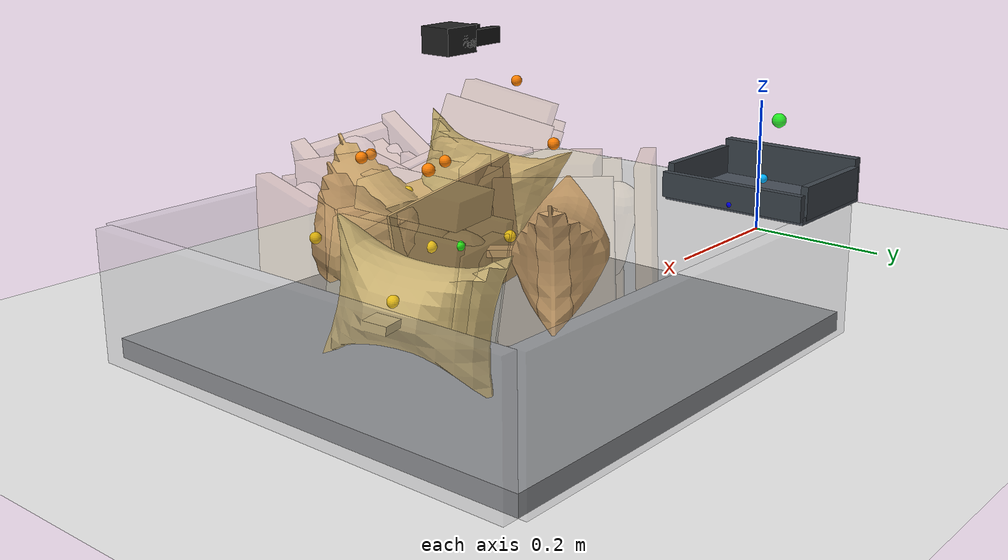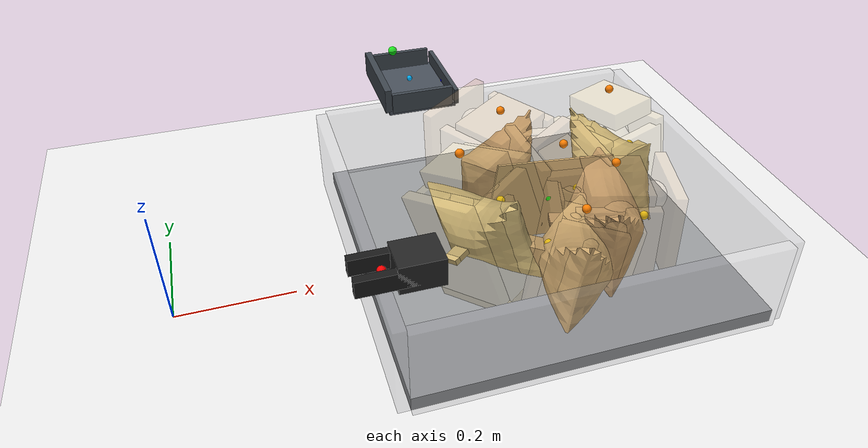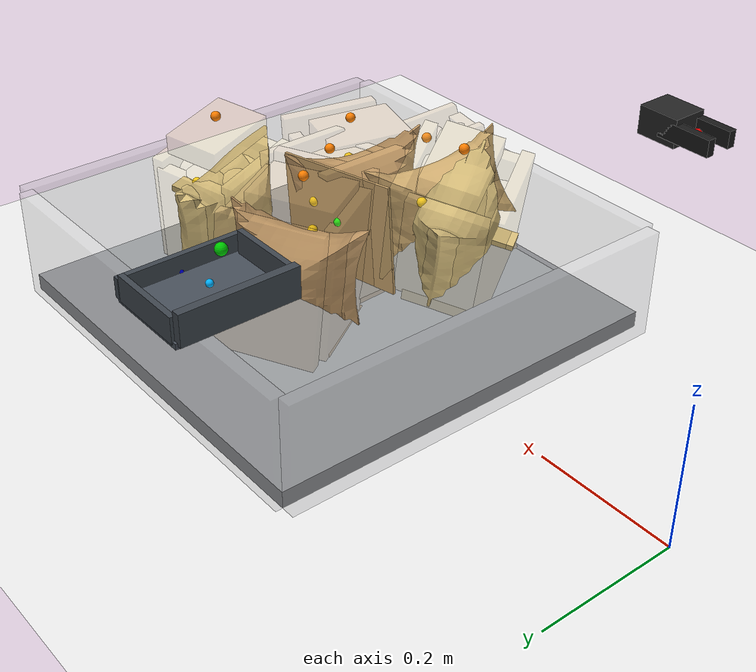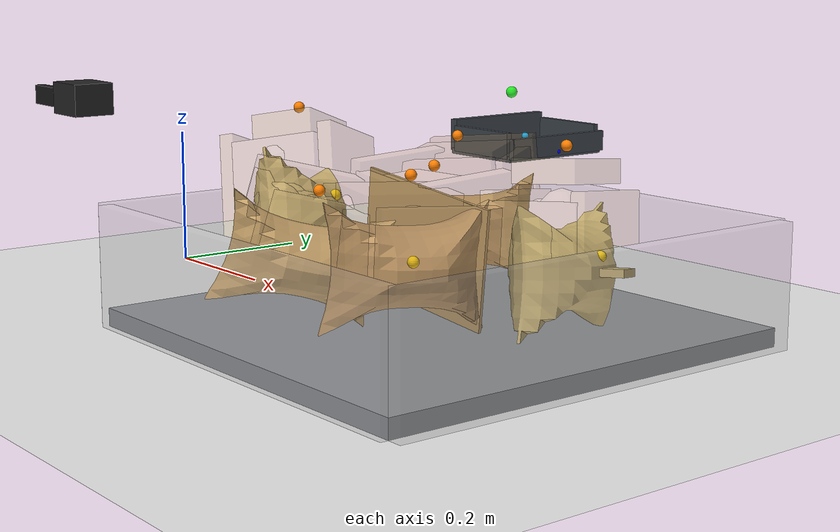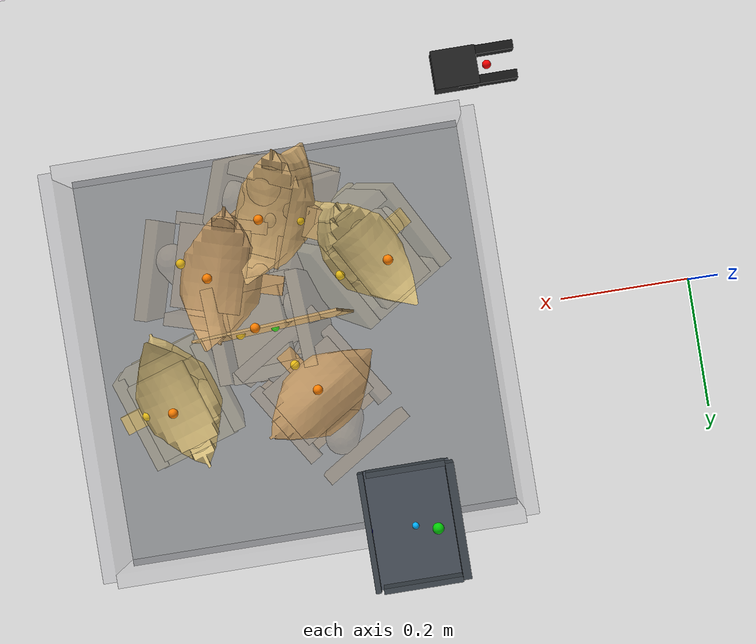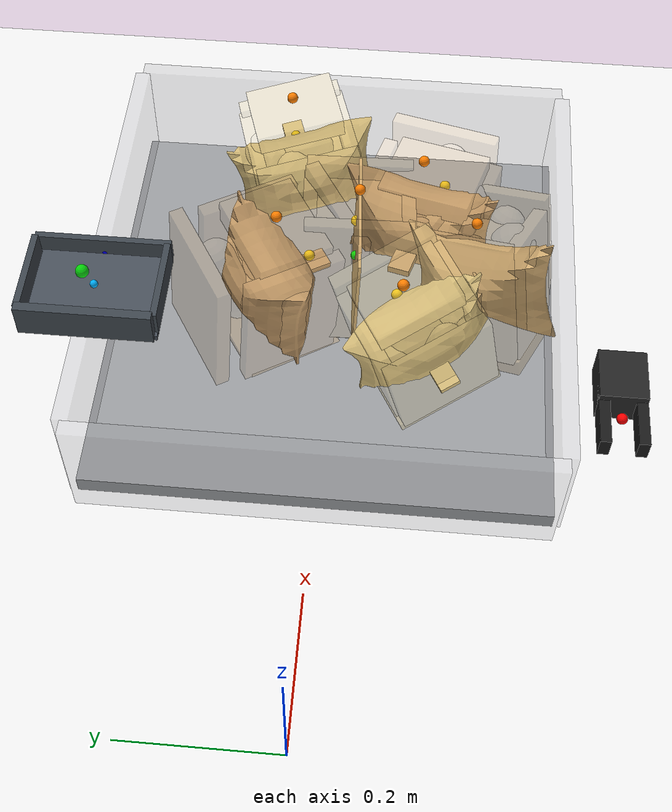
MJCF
<mujoco model="low_fill_top_collapsed_top_exposed_ep0_try0">
  <compiler angle="radian" coordinate="local" inertiafromgeom="true" meshdir="D:/Michael/2025/01.Research/01.Parceldetection/16.Pybullet/bullet3-master (1)/bullet3-master/examples/pybullet/examples/DeformableTest/Sackcodex2/object"/>
  <option timestep="0.002" gravity="0 0 -9.81" integrator="implicitfast" iterations="100" tolerance="1e-8"/>
  <size memory="768M" nconmax="12000"/>

  <visual>
    <global azimuth="128" elevation="-20"/>
    <headlight ambient="0.34 0.34 0.34" diffuse="0.78 0.78 0.78" specular="0.15 0.15 0.15"/>
    <rgba haze="0.11 0.13 0.18 1"/>
  </visual>

  <default>
    <geom condim="4" friction="1.15 0.03 0.01" margin="0.003" solimp="0.93 0.98 0.003" solref="0.012 1"/>
    <joint damping="1.2" armature="0.002"/>
    <position kp="2500" forcelimited="true" forcerange="-420 420"/>
    <motor ctrllimited="true"/>
  </default>

  <asset>
    <mesh name="sack_0_visual_mesh" file="sack2.obj" scale="0.0740 0.0740 0.0773"/>
    <mesh name="sack_1_visual_mesh" file="sack9.obj" scale="0.0759 0.0759 0.0815"/>
    <mesh name="sack_2_visual_mesh" file="sack10.obj" scale="0.0727 0.0727 0.0735"/>
    <mesh name="sack_3_visual_mesh" file="sack9.obj" scale="0.0738 0.0738 0.0819"/>
    <mesh name="sack_4_visual_mesh" file="sack9.obj" scale="0.0700 0.0700 0.0752"/>
    <mesh name="sack_5_visual_mesh" file="sack9.obj" scale="0.0686 0.0686 0.0742"/>
  </asset>

  <worldbody>
    <light name="key" pos="0.85 0.15 1.8" dir="-0.2 -0.1 -1" directional="true"/>
    <geom name="floor" type="plane" size="2 2 0.1" rgba="0.93 0.93 0.93 1"/>
    <geom name="work_pad" type="box" pos="0.62 0 0.012" size="0.30 0.30 0.012" rgba="0.60 0.61 0.62 1" friction="1.4 0.05 0.01"/>
    <geom name="corral_front" type="box" pos="0.93 0.00 0.08" size="0.010 0.30 0.08" rgba="0.55 0.55 0.58 0.22" friction="1.0 0.03 0.01"/>
    <geom name="corral_back" type="box" pos="0.31 0.00 0.08" size="0.010 0.30 0.08" rgba="0.55 0.55 0.58 0.18" friction="1.0 0.03 0.01"/>
    <geom name="corral_left" type="box" pos="0.62 0.30 0.08" size="0.30 0.010 0.08" rgba="0.55 0.55 0.58 0.14" friction="1.0 0.03 0.01"/>
    <geom name="corral_right" type="box" pos="0.62 -0.30 0.08" size="0.30 0.010 0.08" rgba="0.55 0.55 0.58 0.14" friction="1.0 0.03 0.01"/>
    <camera name="overview" pos="1.22 0.00 0.92" xyaxes="0 1 0 -0.46 0 0.88"/>

    <body name="gripper_mocap" mocap="true" pos="0.36 -0.33 0.30" quat="0.707107 0 -0.707107 0"/>
    <body name="scoop_mocap" mocap="true" pos="0.42 0.28 0.20" quat="1 0 0 0"/>

    <body name="gripper_ctrl_base" pos="0.36 -0.33 0.30">
      <inertial pos="0 0 0" mass="0.001" diaginertia="1e-6 1e-6 1e-6"/>
      <joint name="gripper_ctrl_x" type="slide" axis="1 0 0" limited="true" range="0.20 1.00"/>
      <body name="gripper_ctrl_y_body">
        <inertial pos="0 0 0" mass="0.001" diaginertia="1e-6 1e-6 1e-6"/>
        <joint name="gripper_ctrl_y" type="slide" axis="0 1 0" limited="true" range="-0.60 0.60"/>
        <body name="gripper_ctrl_z_body">
          <inertial pos="0 0 0" mass="0.001" diaginertia="1e-6 1e-6 1e-6"/>
          <joint name="gripper_ctrl_z" type="slide" axis="0 0 1" limited="true" range="0.04 0.70"/>
          <body name="gripper_ctrl_yaw_body">
            <inertial pos="0 0 0" mass="0.001" diaginertia="1e-6 1e-6 1e-6"/>
            <joint name="gripper_ctrl_yaw" type="hinge" axis="0 0 1" limited="true" range="-3.1416 3.1416"/>
            <body name="gripper_ctrl_pitch_body">
              <inertial pos="0 0 0" mass="0.001" diaginertia="1e-6 1e-6 1e-6"/>
              <joint name="gripper_ctrl_pitch" type="hinge" axis="0 1 0" limited="true" range="-3.1416 3.1416"/>
              <body name="gripper_ctrl_roll_body">
                <inertial pos="0 0 0" mass="0.001" diaginertia="1e-6 1e-6 1e-6"/>
                <joint name="gripper_ctrl_roll" type="hinge" axis="1 0 0" limited="true" range="-3.1416 3.1416"/>
              </body>
            </body>
          </body>
        </body>
      </body>
    </body>

    <body name="scoop_ctrl_base" pos="0.42 0.28 0.20">
      <inertial pos="0 0 0" mass="0.001" diaginertia="1e-6 1e-6 1e-6"/>
      <joint name="scoop_ctrl_x" type="slide" axis="1 0 0" limited="true" range="0.20 1.00"/>
      <body name="scoop_ctrl_y_body">
        <inertial pos="0 0 0" mass="0.001" diaginertia="1e-6 1e-6 1e-6"/>
        <joint name="scoop_ctrl_y" type="slide" axis="0 1 0" limited="true" range="-0.60 0.60"/>
        <body name="scoop_ctrl_z_body">
          <inertial pos="0 0 0" mass="0.001" diaginertia="1e-6 1e-6 1e-6"/>
          <joint name="scoop_ctrl_z" type="slide" axis="0 0 1" limited="true" range="0.04 0.70"/>
          <body name="scoop_ctrl_yaw_body">
            <inertial pos="0 0 0" mass="0.001" diaginertia="1e-6 1e-6 1e-6"/>
            <joint name="scoop_ctrl_yaw" type="hinge" axis="0 0 1" limited="true" range="-3.1416 3.1416"/>
            <body name="scoop_ctrl_pitch_body">
              <inertial pos="0 0 0" mass="0.001" diaginertia="1e-6 1e-6 1e-6"/>
              <joint name="scoop_ctrl_pitch" type="hinge" axis="0 1 0" limited="true" range="-3.1416 3.1416"/>
              <body name="scoop_ctrl_roll_body">
                <inertial pos="0 0 0" mass="0.001" diaginertia="1e-6 1e-6 1e-6"/>
                <joint name="scoop_ctrl_roll" type="hinge" axis="1 0 0" limited="true" range="-3.1416 3.1416"/>
              </body>
            </body>
          </body>
        </body>
      </body>
    </body>

    <body name="gripper_tool" pos="0.36 -0.33 0.30" quat="0.707107 0 -0.707107 0">
      <freejoint name="gripper_tool_free"/>
      <inertial pos="0 0 0.04" mass="0.08" diaginertia="0.0002 0.0002 0.0002"/>
      <geom name="gripper_palm" type="box" pos="0 0 0.030" size="0.020 0.026 0.030" rgba="0.14 0.14 0.14 1"/>
      <body name="left_finger_body" pos="0 0 0.072">
        <joint name="left_finger_slide" type="slide" axis="0 1 0" limited="true" range="0.010 0.040" damping="12"/>
        <geom name="left_finger_geom" type="box" pos="0 0.020 0" size="0.012 0.006 0.040" rgba="0.10 0.10 0.10 1" friction="2.2 0.05 0.01"/>
      </body>
      <body name="right_finger_body" pos="0 0 0.072">
        <joint name="right_finger_slide" type="slide" axis="0 -1 0" limited="true" range="0.010 0.040" damping="12"/>
        <geom name="right_finger_geom" type="box" pos="0 -0.020 0" size="0.012 0.006 0.040" rgba="0.10 0.10 0.10 1" friction="2.2 0.05 0.01"/>
      </body>
      <site name="gripper_pinch_site" pos="0 0 0.074" size="0.006" rgba="1 0 0 1"/>
    </body>

    <body name="scoop_tool" pos="0.42 0.28 0.20" quat="1 0 0 0">
      <freejoint name="scoop_tool_free"/>
      <inertial pos="0 0 0.02" mass="0.10" diaginertia="0.0003 0.0003 0.0003"/>
      <geom name="scoop_plate" type="box" pos="0.062 0 0" size="0.062 0.085 0.004" rgba="0.28 0.31 0.35 1" friction="1.7 0.05 0.01"/>
      <geom name="scoop_lip" type="box" pos="0.126 0 0.014" size="0.004 0.085 0.014" rgba="0.24 0.27 0.30 1" friction="1.7 0.05 0.01"/>
      <geom name="scoop_left_rail" type="box" pos="0.062 0.082 0.018" size="0.056 0.004 0.018" rgba="0.24 0.27 0.30 1"/>
      <geom name="scoop_right_rail" type="box" pos="0.062 -0.082 0.018" size="0.056 0.004 0.018" rgba="0.24 0.27 0.30 1"/>
      <geom name="scoop_backstop" type="box" pos="0.000 0 0.022" size="0.006 0.082 0.022" rgba="0.24 0.27 0.30 1"/>
      <site name="scoop_tip_site" pos="0.126 0 0.005" size="0.005" rgba="0 0 1 1"/>
      <site name="scoop_center_site" pos="0.060 0 0.020" size="0.005" rgba="0 0.7 1 1"/>
      <site name="score_overlay_site" pos="0.030 0 0.080" size="0.008" rgba="0 1 0 0.8"/>
    </body>

    <body name="sack_0" pos="0.6381 -0.0275 0.1207" euler="0.0267 0.1306 -1.5148">
      <freejoint name="sack_0_free"/>

      <geom name="sack_0_visual" type="mesh" mesh="sack_0_visual_mesh" rgba="0.820 0.670 0.440 0.92" contype="0" conaffinity="0"/>
      <site name="sack_0_center_site" pos="0 0 0.000" size="0.006" rgba="0 1 0 1"/>
      <site name="sack_0_top_site" pos="0 0.0060 0.1067" size="0.007" rgba="1 0.5 0 1"/>
      <site name="sack_0_side_site" pos="0.0000 0.0492 0.018" size="0.007" rgba="1 0.8 0 1"/>

      <geom name="sack_0_core_geom" type="ellipsoid" pos="0 0 0.0057" size="0.0455 0.0356 0.0678" mass="0.7222" rgba="0.820 0.670 0.440 0.12" friction="1.0 0.03 0.01"/>
      <geom name="sack_0_core_front" type="capsule" fromto="-0.0200 0 -0.0200 0.0450 0 0.0600" size="0.0301" mass="0.1720" rgba="0.820 0.670 0.440 0.10"/>
      <geom name="sack_0_core_left" type="capsule" fromto="-0.008 0.0248 -0.010 0.018 0.0428 0.060" size="0.0240" mass="0.3095" rgba="0.820 0.670 0.440 0.10"/>
      <geom name="sack_0_core_right" type="capsule" fromto="-0.006 -0.0248 -0.008 0.020 -0.0448 0.054" size="0.0221" mass="0.3095" rgba="0.820 0.670 0.440 0.10"/>

      <body name="sack_0_bottom_support_proxy_body" pos="0 0.0033 -0.0983">
        <joint name="sack_0_bottom_x" type="slide" axis="1 0 0" limited="true" range="-0.012 0.012" damping="18" stiffness="464.5"/>
        <joint name="sack_0_bottom_y" type="slide" axis="0 1 0" limited="true" range="-0.012 0.012" damping="18" stiffness="464.5"/>
        <joint name="sack_0_bottom_z" type="slide" axis="0 0 1" limited="true" range="-0.008 0.020" damping="24" stiffness="572.2"/>
        <geom name="sack_0_bottom_support_proxy" type="box" size="0.0731 0.0552 0.0100" mass="0.1376" rgba="0.820 0.670 0.440 0.34" friction="1.55 0.05 0.01"/>
      </body>

      <body name="sack_0_top_grasp_proxy_body" pos="0.0000 0.0060 0.0767">
        <joint name="sack_0_top_x" type="slide" axis="1 0 0" limited="true" range="-0.018 0.018" damping="12" stiffness="178.4"/>
        <joint name="sack_0_top_y" type="slide" axis="0 1 0" limited="true" range="-0.018 0.018" damping="12" stiffness="178.4"/>
        <joint name="sack_0_top_z" type="slide" axis="0 0 1" limited="true" range="-0.040 0.010" damping="14" stiffness="131.5"/>
        <geom name="sack_0_top_grasp_proxy" type="box" size="0.0571 0.0392 0.0150" mass="0.1032" rgba="0.820 0.670 0.440 0.26" friction="2.2 0.05 0.01"/>
      </body>

      <body name="sack_0_left_side_proxy_body" pos="0 0.0640 0.010">
        <joint name="sack_0_left_side_slide" type="slide" axis="0 -1 0" limited="true" range="-0.028 0.016" damping="16" stiffness="231.8"/>
        <geom name="sack_0_left_side_proxy" type="box" size="0.0691 0.0090 0.0963" mass="0.1032" rgba="0.820 0.670 0.440 0.24"/>
      </body>

      <body name="sack_0_right_side_proxy_body" pos="0 -0.0600 0.010">
        <joint name="sack_0_right_side_slide" type="slide" axis="0 1 0" limited="true" range="-0.028 0.016" damping="16" stiffness="214.9"/>
        <geom name="sack_0_right_side_proxy" type="box" size="0.0691 0.0090 0.0963" mass="0.1032" rgba="0.820 0.670 0.440 0.24"/>
      </body>

      <body name="sack_0_front_proxy_body" pos="0.0631 0 0.000">
        <joint name="sack_0_front_slide" type="slide" axis="-1 0 0" limited="true" range="-0.022 0.012" damping="15" stiffness="222.2"/>
        <geom name="sack_0_front_support_proxy" type="box" size="0.0090 0.0552 0.0943" mass="0.0860" rgba="0.820 0.670 0.440 0.22"/>
      </body>

      <body name="sack_0_back_proxy_body" pos="-0.0631 0 0.000">
        <joint name="sack_0_back_slide" type="slide" axis="1 0 0" limited="true" range="-0.022 0.012" damping="15" stiffness="205.3"/>
        <geom name="sack_0_back_support_proxy" type="box" size="0.0090 0.0552 0.0943" mass="0.0860" rgba="0.820 0.670 0.440 0.22"/>
      </body>

      <body name="sack_0_shape_proxy_body" pos="0.0000 0.0168 0.0385">
        <joint name="sack_0_bulge_y" type="slide" axis="0 1 0" limited="true" range="-0.020 0.020" damping="8" stiffness="97.0"/>
        <joint name="sack_0_bulge_z" type="slide" axis="0 0 1" limited="true" range="-0.014 0.028" damping="8" stiffness="97.8"/>
        <geom name="sack_0_shape_proxy" type="ellipsoid" size="0.0200 0.0161 0.0263" mass="0.0688" rgba="0.820 0.670 0.440 0.28"/>
      </body>
    </body>

    <body name="sack_1" pos="0.7054 -0.1119 0.1185" euler="-0.0427 0.0159 -1.8568">
      <freejoint name="sack_1_free"/>

      <geom name="sack_1_visual" type="mesh" mesh="sack_1_visual_mesh" rgba="0.760 0.600 0.400 0.92" contype="0" conaffinity="0"/>
      <site name="sack_1_center_site" pos="0 0 0.000" size="0.006" rgba="0 1 0 1"/>
      <site name="sack_1_top_site" pos="0 0.0060 0.1097" size="0.007" rgba="1 0.5 0 1"/>
      <site name="sack_1_side_site" pos="0.0140 0.0594 0.018" size="0.007" rgba="1 0.8 0 1"/>

      <geom name="sack_1_core_geom" type="ellipsoid" pos="0 0 0.0059" size="0.0453 0.0357 0.0799" mass="0.9524" rgba="0.760 0.600 0.400 0.12" friction="1.0 0.03 0.01"/>
      <geom name="sack_1_core_front" type="capsule" fromto="-0.0060 0 -0.0200 0.0590 0 0.0600" size="0.0311" mass="0.2268" rgba="0.760 0.600 0.400 0.10"/>
      <geom name="sack_1_core_left" type="capsule" fromto="-0.008 0.0469 -0.010 0.018 0.0649 0.060" size="0.0243" mass="0.4082" rgba="0.760 0.600 0.400 0.10"/>
      <geom name="sack_1_core_right" type="capsule" fromto="-0.006 -0.0469 -0.008 0.020 -0.0669 0.054" size="0.0223" mass="0.4082" rgba="0.760 0.600 0.400 0.10"/>

      <body name="sack_1_bottom_support_proxy_body" pos="0 -0.0002 -0.0782">
        <joint name="sack_1_bottom_x" type="slide" axis="1 0 0" limited="true" range="-0.012 0.012" damping="18" stiffness="494.2"/>
        <joint name="sack_1_bottom_y" type="slide" axis="0 1 0" limited="true" range="-0.012 0.012" damping="18" stiffness="494.2"/>
        <joint name="sack_1_bottom_z" type="slide" axis="0 0 1" limited="true" range="-0.008 0.020" damping="24" stiffness="608.4"/>
        <geom name="sack_1_bottom_support_proxy" type="box" size="0.0761 0.0654 0.0100" mass="0.1814" rgba="0.760 0.600 0.400 0.34" friction="1.55 0.05 0.01"/>
      </body>

      <body name="sack_1_top_grasp_proxy_body" pos="0.0140 0.0060 0.0797">
        <joint name="sack_1_top_x" type="slide" axis="1 0 0" limited="true" range="-0.018 0.018" damping="12" stiffness="190.0"/>
        <joint name="sack_1_top_y" type="slide" axis="0 1 0" limited="true" range="-0.018 0.018" damping="12" stiffness="190.0"/>
        <joint name="sack_1_top_z" type="slide" axis="0 0 1" limited="true" range="-0.040 0.010" damping="14" stiffness="141.4"/>
        <geom name="sack_1_top_grasp_proxy" type="box" size="0.0601 0.0494 0.0150" mass="0.1361" rgba="0.760 0.600 0.400 0.26" friction="2.2 0.05 0.01"/>
      </body>

      <body name="sack_1_left_side_proxy_body" pos="0 0.0962 0.010">
        <joint name="sack_1_left_side_slide" type="slide" axis="0 -1 0" limited="true" range="-0.028 0.016" damping="16" stiffness="252.4"/>
        <geom name="sack_1_left_side_proxy" type="box" size="0.0721 0.0090 0.0762" mass="0.1361" rgba="0.760 0.600 0.400 0.24"/>
      </body>

      <body name="sack_1_right_side_proxy_body" pos="0 -0.0922 0.010">
        <joint name="sack_1_right_side_slide" type="slide" axis="0 1 0" limited="true" range="-0.028 0.016" damping="16" stiffness="233.9"/>
        <geom name="sack_1_right_side_proxy" type="box" size="0.0721 0.0090 0.0762" mass="0.1361" rgba="0.760 0.600 0.400 0.24"/>
      </body>

      <body name="sack_1_front_proxy_body" pos="0.0801 0 0.000">
        <joint name="sack_1_front_slide" type="slide" axis="-1 0 0" limited="true" range="-0.022 0.012" damping="15" stiffness="237.1"/>
        <geom name="sack_1_front_support_proxy" type="box" size="0.0090 0.0654 0.0742" mass="0.1134" rgba="0.760 0.600 0.400 0.22"/>
      </body>

      <body name="sack_1_back_proxy_body" pos="-0.0661 0 0.000">
        <joint name="sack_1_back_slide" type="slide" axis="1 0 0" limited="true" range="-0.022 0.012" damping="15" stiffness="218.5"/>
        <geom name="sack_1_back_support_proxy" type="box" size="0.0090 0.0654 0.0742" mass="0.1134" rgba="0.760 0.600 0.400 0.22"/>
      </body>

      <body name="sack_1_shape_proxy_body" pos="0.0084 0.0389 0.0286">
        <joint name="sack_1_bulge_y" type="slide" axis="0 1 0" limited="true" range="-0.020 0.020" damping="8" stiffness="77.2"/>
        <joint name="sack_1_bulge_z" type="slide" axis="0 0 1" limited="true" range="-0.014 0.028" damping="8" stiffness="82.9"/>
        <geom name="sack_1_shape_proxy" type="ellipsoid" size="0.0203 0.0165 0.0261" mass="0.0907" rgba="0.760 0.600 0.400 0.28"/>
      </body>
    </body>

    <body name="sack_2" pos="0.6125 -0.1960 0.1227" euler="-0.1534 0.2744 -1.9411">
      <freejoint name="sack_2_free"/>

      <geom name="sack_2_visual" type="mesh" mesh="sack_2_visual_mesh" rgba="0.820 0.670 0.440 0.92" contype="0" conaffinity="0"/>
      <site name="sack_2_center_site" pos="0 0 0.000" size="0.006" rgba="0 1 0 1"/>
      <site name="sack_2_top_site" pos="0 -0.0060 0.0869" size="0.007" rgba="1 0.5 0 1"/>
      <site name="sack_2_side_site" pos="0.0000 -0.0464 0.018" size="0.007" rgba="1 0.8 0 1"/>

      <geom name="sack_2_core_geom" type="ellipsoid" pos="0 0 0.0056" size="0.0446 0.0343 0.0659" mass="0.7113" rgba="0.820 0.670 0.440 0.12" friction="1.0 0.03 0.01"/>
      <geom name="sack_2_core_front" type="capsule" fromto="-0.0200 0 -0.0200 0.0450 0 0.0600" size="0.0290" mass="0.1694" rgba="0.820 0.670 0.440 0.10"/>
      <geom name="sack_2_core_left" type="capsule" fromto="-0.008 0.0265 -0.010 0.018 0.0445 0.060" size="0.0241" mass="0.3048" rgba="0.820 0.670 0.440 0.10"/>
      <geom name="sack_2_core_right" type="capsule" fromto="-0.006 -0.0265 -0.008 0.020 -0.0465 0.054" size="0.0221" mass="0.3048" rgba="0.820 0.670 0.440 0.10"/>

      <body name="sack_2_bottom_support_proxy_body" pos="0 -0.0067 -0.0890">
        <joint name="sack_2_bottom_x" type="slide" axis="1 0 0" limited="true" range="-0.012 0.012" damping="18" stiffness="430.5"/>
        <joint name="sack_2_bottom_y" type="slide" axis="0 1 0" limited="true" range="-0.012 0.012" damping="18" stiffness="430.5"/>
        <joint name="sack_2_bottom_z" type="slide" axis="0 0 1" limited="true" range="-0.008 0.020" damping="24" stiffness="530.6"/>
        <geom name="sack_2_bottom_support_proxy" type="box" size="0.0720 0.0524 0.0100" mass="0.1355" rgba="0.820 0.670 0.440 0.34" friction="1.55 0.05 0.01"/>
      </body>

      <body name="sack_2_top_grasp_proxy_body" pos="0.0000 -0.0060 0.0569">
        <joint name="sack_2_top_x" type="slide" axis="1 0 0" limited="true" range="-0.018 0.018" damping="12" stiffness="165.2"/>
        <joint name="sack_2_top_y" type="slide" axis="0 1 0" limited="true" range="-0.018 0.018" damping="12" stiffness="165.2"/>
        <joint name="sack_2_top_z" type="slide" axis="0 0 1" limited="true" range="-0.040 0.010" damping="14" stiffness="120.2"/>
        <geom name="sack_2_top_grasp_proxy" type="box" size="0.0560 0.0364 0.0150" mass="0.1016" rgba="0.820 0.670 0.440 0.26" friction="2.2 0.05 0.01"/>
      </body>

      <body name="sack_2_left_side_proxy_body" pos="0 0.0629 0.010">
        <joint name="sack_2_left_side_slide" type="slide" axis="0 -1 0" limited="true" range="-0.028 0.016" damping="16" stiffness="208.9"/>
        <geom name="sack_2_left_side_proxy" type="box" size="0.0680 0.0090 0.0870" mass="0.1016" rgba="0.820 0.670 0.440 0.24"/>
      </body>

      <body name="sack_2_right_side_proxy_body" pos="0 -0.0589 0.010">
        <joint name="sack_2_right_side_slide" type="slide" axis="0 1 0" limited="true" range="-0.028 0.016" damping="16" stiffness="193.9"/>
        <geom name="sack_2_right_side_proxy" type="box" size="0.0680 0.0090 0.0870" mass="0.1016" rgba="0.820 0.670 0.440 0.24"/>
      </body>

      <body name="sack_2_front_proxy_body" pos="0.0620 0 0.000">
        <joint name="sack_2_front_slide" type="slide" axis="-1 0 0" limited="true" range="-0.022 0.012" damping="15" stiffness="205.2"/>
        <geom name="sack_2_front_support_proxy" type="box" size="0.0090 0.0524 0.0850" mass="0.0847" rgba="0.820 0.670 0.440 0.22"/>
      </body>

      <body name="sack_2_back_proxy_body" pos="-0.0620 0 0.000">
        <joint name="sack_2_back_slide" type="slide" axis="1 0 0" limited="true" range="-0.022 0.012" damping="15" stiffness="190.2"/>
        <geom name="sack_2_back_support_proxy" type="box" size="0.0090 0.0524 0.0850" mass="0.0847" rgba="0.820 0.670 0.440 0.22"/>
      </body>

      <body name="sack_2_shape_proxy_body" pos="0.0000 -0.0185 0.0498">
        <joint name="sack_2_bulge_y" type="slide" axis="0 1 0" limited="true" range="-0.020 0.020" damping="8" stiffness="119.7"/>
        <joint name="sack_2_bulge_z" type="slide" axis="0 0 1" limited="true" range="-0.014 0.028" damping="8" stiffness="114.8"/>
        <geom name="sack_2_shape_proxy" type="ellipsoid" size="0.0201 0.0161 0.0264" mass="0.0677" rgba="0.820 0.670 0.440 0.28"/>
      </body>
    </body>

    <body name="sack_3" pos="0.7959 0.0538 0.1086" euler="-0.0881 -0.1079 1.8720">
      <freejoint name="sack_3_free"/>

      <geom name="sack_3_visual" type="mesh" mesh="sack_3_visual_mesh" rgba="0.840 0.740 0.480 0.92" contype="0" conaffinity="0"/>
      <site name="sack_3_center_site" pos="0 0 0.000" size="0.006" rgba="0 1 0 1"/>
      <site name="sack_3_top_site" pos="0 -0.0060 0.1478" size="0.007" rgba="1 0.5 0 1"/>
      <site name="sack_3_side_site" pos="0.0000 -0.0522 0.018" size="0.007" rgba="1 0.8 0 1"/>

      <geom name="sack_3_core_geom" type="ellipsoid" pos="0 0 0.0059" size="0.0513 0.0436 0.0919" mass="1.1869" rgba="0.840 0.740 0.480 0.12" friction="1.0 0.03 0.01"/>
      <geom name="sack_3_core_front" type="capsule" fromto="-0.0200 0 -0.0200 0.0450 0 0.0600" size="0.0323" mass="0.2826" rgba="0.840 0.740 0.480 0.10"/>
      <geom name="sack_3_core_left" type="capsule" fromto="-0.008 0.0203 -0.010 0.018 0.0383 0.060" size="0.0240" mass="0.5087" rgba="0.840 0.740 0.480 0.10"/>
      <geom name="sack_3_core_right" type="capsule" fromto="-0.006 -0.0203 -0.008 0.020 -0.0403 0.054" size="0.0220" mass="0.5087" rgba="0.840 0.740 0.480 0.10"/>

      <body name="sack_3_bottom_support_proxy_body" pos="0 0.0110 -0.0870">
        <joint name="sack_3_bottom_x" type="slide" axis="1 0 0" limited="true" range="-0.012 0.012" damping="18" stiffness="529.7"/>
        <joint name="sack_3_bottom_y" type="slide" axis="0 1 0" limited="true" range="-0.012 0.012" damping="18" stiffness="529.7"/>
        <joint name="sack_3_bottom_z" type="slide" axis="0 0 1" limited="true" range="-0.008 0.020" damping="24" stiffness="651.8"/>
        <geom name="sack_3_bottom_support_proxy" type="box" size="0.0731 0.0582 0.0100" mass="0.2261" rgba="0.840 0.740 0.480 0.34" friction="1.55 0.05 0.01"/>
      </body>

      <body name="sack_3_top_grasp_proxy_body" pos="0.0000 -0.0060 0.1178">
        <joint name="sack_3_top_x" type="slide" axis="1 0 0" limited="true" range="-0.018 0.018" damping="12" stiffness="203.8"/>
        <joint name="sack_3_top_y" type="slide" axis="0 1 0" limited="true" range="-0.018 0.018" damping="12" stiffness="203.8"/>
        <joint name="sack_3_top_z" type="slide" axis="0 0 1" limited="true" range="-0.040 0.010" damping="14" stiffness="153.2"/>
        <geom name="sack_3_top_grasp_proxy" type="box" size="0.0571 0.0422 0.0150" mass="0.1696" rgba="0.840 0.740 0.480 0.26" friction="2.2 0.05 0.01"/>
      </body>

      <body name="sack_3_left_side_proxy_body" pos="0 0.0625 0.010">
        <joint name="sack_3_left_side_slide" type="slide" axis="0 -1 0" limited="true" range="-0.028 0.016" damping="16" stiffness="276.2"/>
        <geom name="sack_3_left_side_proxy" type="box" size="0.0691 0.0090 0.0850" mass="0.1696" rgba="0.840 0.740 0.480 0.24"/>
      </body>

      <body name="sack_3_right_side_proxy_body" pos="0 -0.0585 0.010">
        <joint name="sack_3_right_side_slide" type="slide" axis="0 1 0" limited="true" range="-0.028 0.016" damping="16" stiffness="255.6"/>
        <geom name="sack_3_right_side_proxy" type="box" size="0.0691 0.0090 0.0850" mass="0.1696" rgba="0.840 0.740 0.480 0.24"/>
      </body>

      <body name="sack_3_front_proxy_body" pos="0.0631 0 0.000">
        <joint name="sack_3_front_slide" type="slide" axis="-1 0 0" limited="true" range="-0.022 0.012" damping="15" stiffness="254.8"/>
        <geom name="sack_3_front_support_proxy" type="box" size="0.0090 0.0582 0.0830" mass="0.1413" rgba="0.840 0.740 0.480 0.22"/>
      </body>

      <body name="sack_3_back_proxy_body" pos="-0.0631 0 0.000">
        <joint name="sack_3_back_slide" type="slide" axis="1 0 0" limited="true" range="-0.022 0.012" damping="15" stiffness="234.3"/>
        <geom name="sack_3_back_support_proxy" type="box" size="0.0090 0.0582 0.0830" mass="0.1413" rgba="0.840 0.740 0.480 0.22"/>
      </body>

      <body name="sack_3_shape_proxy_body" pos="0.0000 -0.0123 0.0168">
        <joint name="sack_3_bulge_y" type="slide" axis="0 1 0" limited="true" range="-0.020 0.020" damping="8" stiffness="60.0"/>
        <joint name="sack_3_bulge_z" type="slide" axis="0 0 1" limited="true" range="-0.014 0.028" damping="8" stiffness="70.0"/>
        <geom name="sack_3_shape_proxy" type="ellipsoid" size="0.0200 0.0160 0.0261" mass="0.1130" rgba="0.840 0.740 0.480 0.28"/>
      </body>
    </body>

    <body name="sack_4" pos="0.5862 0.0830 0.1231" euler="0.0746 -0.0463 0.5642">
      <freejoint name="sack_4_free"/>

      <geom name="sack_4_visual" type="mesh" mesh="sack_4_visual_mesh" rgba="0.760 0.600 0.400 0.92" contype="0" conaffinity="0"/>
      <site name="sack_4_center_site" pos="0 0 0.000" size="0.006" rgba="0 1 0 1"/>
      <site name="sack_4_top_site" pos="0 -0.0060 0.1247" size="0.007" rgba="1 0.5 0 1"/>
      <site name="sack_4_side_site" pos="0.0000 -0.0594 0.018" size="0.007" rgba="1 0.8 0 1"/>

      <geom name="sack_4_core_geom" type="ellipsoid" pos="0 0 0.0058" size="0.0453 0.0357 0.0799" mass="0.9286" rgba="0.760 0.600 0.400 0.12" friction="1.0 0.03 0.01"/>
      <geom name="sack_4_core_front" type="capsule" fromto="-0.0200 0 -0.0200 0.0450 0 0.0600" size="0.0311" mass="0.2211" rgba="0.760 0.600 0.400 0.10"/>
      <geom name="sack_4_core_left" type="capsule" fromto="-0.008 0.0479 -0.010 0.018 0.0659 0.060" size="0.0243" mass="0.3980" rgba="0.760 0.600 0.400 0.10"/>
      <geom name="sack_4_core_right" type="capsule" fromto="-0.006 -0.0479 -0.008 0.020 -0.0679 0.054" size="0.0223" mass="0.3980" rgba="0.760 0.600 0.400 0.10"/>

      <body name="sack_4_bottom_support_proxy_body" pos="0 -0.0099 -0.1005">
        <joint name="sack_4_bottom_x" type="slide" axis="1 0 0" limited="true" range="-0.012 0.012" damping="18" stiffness="494.2"/>
        <joint name="sack_4_bottom_y" type="slide" axis="0 1 0" limited="true" range="-0.012 0.012" damping="18" stiffness="494.2"/>
        <joint name="sack_4_bottom_z" type="slide" axis="0 0 1" limited="true" range="-0.008 0.020" damping="24" stiffness="608.5"/>
        <geom name="sack_4_bottom_support_proxy" type="box" size="0.0761 0.0654 0.0100" mass="0.1769" rgba="0.760 0.600 0.400 0.34" friction="1.55 0.05 0.01"/>
      </body>

      <body name="sack_4_top_grasp_proxy_body" pos="0.0000 -0.0060 0.0947">
        <joint name="sack_4_top_x" type="slide" axis="1 0 0" limited="true" range="-0.018 0.018" damping="12" stiffness="190.0"/>
        <joint name="sack_4_top_y" type="slide" axis="0 1 0" limited="true" range="-0.018 0.018" damping="12" stiffness="190.0"/>
        <joint name="sack_4_top_z" type="slide" axis="0 0 1" limited="true" range="-0.040 0.010" damping="14" stiffness="141.4"/>
        <geom name="sack_4_top_grasp_proxy" type="box" size="0.0601 0.0494 0.0150" mass="0.1327" rgba="0.760 0.600 0.400 0.26" friction="2.2 0.05 0.01"/>
      </body>

      <body name="sack_4_left_side_proxy_body" pos="0 0.0973 0.010">
        <joint name="sack_4_left_side_slide" type="slide" axis="0 -1 0" limited="true" range="-0.028 0.016" damping="16" stiffness="252.2"/>
        <geom name="sack_4_left_side_proxy" type="box" size="0.0721 0.0090 0.0985" mass="0.1327" rgba="0.760 0.600 0.400 0.24"/>
      </body>

      <body name="sack_4_right_side_proxy_body" pos="0 -0.0933 0.010">
        <joint name="sack_4_right_side_slide" type="slide" axis="0 1 0" limited="true" range="-0.028 0.016" damping="16" stiffness="233.7"/>
        <geom name="sack_4_right_side_proxy" type="box" size="0.0721 0.0090 0.0985" mass="0.1327" rgba="0.760 0.600 0.400 0.24"/>
      </body>

      <body name="sack_4_front_proxy_body" pos="0.0661 0 0.000">
        <joint name="sack_4_front_slide" type="slide" axis="-1 0 0" limited="true" range="-0.022 0.012" damping="15" stiffness="237.1"/>
        <geom name="sack_4_front_support_proxy" type="box" size="0.0090 0.0654 0.0965" mass="0.1105" rgba="0.760 0.600 0.400 0.22"/>
      </body>

      <body name="sack_4_back_proxy_body" pos="-0.0661 0 0.000">
        <joint name="sack_4_back_slide" type="slide" axis="1 0 0" limited="true" range="-0.022 0.012" damping="15" stiffness="218.5"/>
        <geom name="sack_4_back_support_proxy" type="box" size="0.0090 0.0654 0.0965" mass="0.1105" rgba="0.760 0.600 0.400 0.22"/>
      </body>

      <body name="sack_4_shape_proxy_body" pos="0.0000 -0.0399 0.0286">
        <joint name="sack_4_bulge_y" type="slide" axis="0 1 0" limited="true" range="-0.020 0.020" damping="8" stiffness="77.2"/>
        <joint name="sack_4_bulge_z" type="slide" axis="0 0 1" limited="true" range="-0.014 0.028" damping="8" stiffness="82.9"/>
        <geom name="sack_4_shape_proxy" type="ellipsoid" size="0.0203 0.0166 0.0261" mass="0.0884" rgba="0.760 0.600 0.400 0.28"/>
      </body>
    </body>

    <body name="sack_5" pos="0.4928 -0.1152 0.1533" euler="-0.1527 -0.2864 -1.0522">
      <freejoint name="sack_5_free"/>

      <geom name="sack_5_visual" type="mesh" mesh="sack_5_visual_mesh" rgba="0.840 0.740 0.480 0.92" contype="0" conaffinity="0"/>
      <site name="sack_5_center_site" pos="0 0 0.000" size="0.006" rgba="0 1 0 1"/>
      <site name="sack_5_top_site" pos="0 0.0060 0.1366" size="0.007" rgba="1 0.5 0 1"/>
      <site name="sack_5_side_site" pos="0.0000 0.0502 0.018" size="0.007" rgba="1 0.8 0 1"/>

      <geom name="sack_5_core_geom" type="ellipsoid" pos="0 0 0.0059" size="0.0505 0.0424 0.0899" mass="1.1752" rgba="0.840 0.740 0.480 0.12" friction="1.0 0.03 0.01"/>
      <geom name="sack_5_core_front" type="capsule" fromto="-0.0200 0 -0.0200 0.0450 0 0.0600" size="0.0314" mass="0.2798" rgba="0.840 0.740 0.480 0.10"/>
      <geom name="sack_5_core_left" type="capsule" fromto="-0.008 0.0291 -0.010 0.018 0.0471 0.060" size="0.0241" mass="0.5036" rgba="0.840 0.740 0.480 0.10"/>
      <geom name="sack_5_core_right" type="capsule" fromto="-0.006 -0.0291 -0.008 0.020 -0.0491 0.054" size="0.0221" mass="0.5036" rgba="0.840 0.740 0.480 0.10"/>

      <body name="sack_5_bottom_support_proxy_body" pos="0 -0.0131 -0.0914">
        <joint name="sack_5_bottom_x" type="slide" axis="1 0 0" limited="true" range="-0.012 0.012" damping="18" stiffness="502.3"/>
        <joint name="sack_5_bottom_y" type="slide" axis="0 1 0" limited="true" range="-0.012 0.012" damping="18" stiffness="502.3"/>
        <joint name="sack_5_bottom_z" type="slide" axis="0 0 1" limited="true" range="-0.008 0.020" damping="24" stiffness="618.4"/>
        <geom name="sack_5_bottom_support_proxy" type="box" size="0.0722 0.0562 0.0100" mass="0.2238" rgba="0.840 0.740 0.480 0.34" friction="1.55 0.05 0.01"/>
      </body>

      <body name="sack_5_top_grasp_proxy_body" pos="0.0000 0.0060 0.1066">
        <joint name="sack_5_top_x" type="slide" axis="1 0 0" limited="true" range="-0.018 0.018" damping="12" stiffness="193.1"/>
        <joint name="sack_5_top_y" type="slide" axis="0 1 0" limited="true" range="-0.018 0.018" damping="12" stiffness="193.1"/>
        <joint name="sack_5_top_z" type="slide" axis="0 0 1" limited="true" range="-0.040 0.010" damping="14" stiffness="144.1"/>
        <geom name="sack_5_top_grasp_proxy" type="box" size="0.0562 0.0402 0.0150" mass="0.1679" rgba="0.840 0.740 0.480 0.26" friction="2.2 0.05 0.01"/>
      </body>

      <body name="sack_5_left_side_proxy_body" pos="0 0.0693 0.010">
        <joint name="sack_5_left_side_slide" type="slide" axis="0 -1 0" limited="true" range="-0.028 0.016" damping="16" stiffness="258.0"/>
        <geom name="sack_5_left_side_proxy" type="box" size="0.0682 0.0090 0.0894" mass="0.1679" rgba="0.840 0.740 0.480 0.24"/>
      </body>

      <body name="sack_5_right_side_proxy_body" pos="0 -0.0653 0.010">
        <joint name="sack_5_right_side_slide" type="slide" axis="0 1 0" limited="true" range="-0.028 0.016" damping="16" stiffness="239.0"/>
        <geom name="sack_5_right_side_proxy" type="box" size="0.0682 0.0090 0.0894" mass="0.1679" rgba="0.840 0.740 0.480 0.24"/>
      </body>

      <body name="sack_5_front_proxy_body" pos="0.0622 0 0.000">
        <joint name="sack_5_front_slide" type="slide" axis="-1 0 0" limited="true" range="-0.022 0.012" damping="15" stiffness="241.1"/>
        <geom name="sack_5_front_support_proxy" type="box" size="0.0090 0.0562 0.0874" mass="0.1399" rgba="0.840 0.740 0.480 0.22"/>
      </body>

      <body name="sack_5_back_proxy_body" pos="-0.0622 0 0.000">
        <joint name="sack_5_back_slide" type="slide" axis="1 0 0" limited="true" range="-0.022 0.012" damping="15" stiffness="222.1"/>
        <geom name="sack_5_back_support_proxy" type="box" size="0.0090 0.0562 0.0874" mass="0.1399" rgba="0.840 0.740 0.480 0.22"/>
      </body>

      <body name="sack_5_shape_proxy_body" pos="0.0000 0.0211 0.0259">
        <joint name="sack_5_bulge_y" type="slide" axis="0 1 0" limited="true" range="-0.020 0.020" damping="8" stiffness="71.8"/>
        <joint name="sack_5_bulge_z" type="slide" axis="0 0 1" limited="true" range="-0.014 0.028" damping="8" stiffness="78.9"/>
        <geom name="sack_5_shape_proxy" type="ellipsoid" size="0.0201 0.0162 0.0260" mass="0.1119" rgba="0.840 0.740 0.480 0.28"/>
      </body>
    </body>
  </worldbody>

  <equality>
    <weld name="gripper_follow" body1="gripper_mocap" body2="gripper_tool" torquescale="400" solref="0.002 1" solimp="0.99 0.999 0.0001"/>
    <weld name="scoop_follow" body1="scoop_mocap" body2="scoop_tool" torquescale="500" solref="0.002 1" solimp="0.99 0.999 0.0001"/>
  </equality>

  <actuator>
    <position name="gripper_ctrl_x_act" joint="gripper_ctrl_x" ctrlrange="0.20 1.00" kp="3500" forcerange="-300 300"/>
    <position name="gripper_ctrl_y_act" joint="gripper_ctrl_y" ctrlrange="-0.60 0.60" kp="3500" forcerange="-300 300"/>
    <position name="gripper_ctrl_z_act" joint="gripper_ctrl_z" ctrlrange="0.04 0.70" kp="3500" forcerange="-300 300"/>
    <position name="gripper_ctrl_yaw_act" joint="gripper_ctrl_yaw" ctrlrange="-3.1416 3.1416" kp="1800" forcerange="-250 250"/>
    <position name="gripper_ctrl_pitch_act" joint="gripper_ctrl_pitch" ctrlrange="-3.1416 3.1416" kp="1800" forcerange="-250 250"/>
    <position name="gripper_ctrl_roll_act" joint="gripper_ctrl_roll" ctrlrange="-3.1416 3.1416" kp="1800" forcerange="-250 250"/>
    <position name="scoop_ctrl_x_act" joint="scoop_ctrl_x" ctrlrange="0.20 1.00" kp="3500" forcerange="-300 300"/>
    <position name="scoop_ctrl_y_act" joint="scoop_ctrl_y" ctrlrange="-0.60 0.60" kp="3500" forcerange="-300 300"/>
    <position name="scoop_ctrl_z_act" joint="scoop_ctrl_z" ctrlrange="0.04 0.70" kp="3500" forcerange="-300 300"/>
    <position name="scoop_ctrl_yaw_act" joint="scoop_ctrl_yaw" ctrlrange="-3.1416 3.1416" kp="1800" forcerange="-250 250"/>
    <position name="scoop_ctrl_pitch_act" joint="scoop_ctrl_pitch" ctrlrange="-3.1416 3.1416" kp="1800" forcerange="-250 250"/>
    <position name="scoop_ctrl_roll_act" joint="scoop_ctrl_roll" ctrlrange="-3.1416 3.1416" kp="1800" forcerange="-250 250"/>
    <position name="left_finger_act" joint="left_finger_slide" ctrlrange="0.010 0.040" kp="2800" forcerange="-220 220"/>
    <position name="right_finger_act" joint="right_finger_slide" ctrlrange="0.010 0.040" kp="2800" forcerange="-220 220"/>
  </actuator>

  <contact>
    <exclude body1="sack_0_top_grasp_proxy_body" body2="sack_0_left_side_proxy_body"/>
    <exclude body1="sack_0_top_grasp_proxy_body" body2="sack_0_right_side_proxy_body"/>
    <exclude body1="sack_1_top_grasp_proxy_body" body2="sack_1_left_side_proxy_body"/>
    <exclude body1="sack_1_top_grasp_proxy_body" body2="sack_1_right_side_proxy_body"/>
    <exclude body1="sack_2_top_grasp_proxy_body" body2="sack_2_left_side_proxy_body"/>
    <exclude body1="sack_2_top_grasp_proxy_body" body2="sack_2_right_side_proxy_body"/>
    <exclude body1="sack_3_top_grasp_proxy_body" body2="sack_3_left_side_proxy_body"/>
    <exclude body1="sack_3_top_grasp_proxy_body" body2="sack_3_right_side_proxy_body"/>
    <exclude body1="sack_4_top_grasp_proxy_body" body2="sack_4_left_side_proxy_body"/>
    <exclude body1="sack_4_top_grasp_proxy_body" body2="sack_4_right_side_proxy_body"/>
    <exclude body1="sack_5_top_grasp_proxy_body" body2="sack_5_left_side_proxy_body"/>
    <exclude body1="sack_5_top_grasp_proxy_body" body2="sack_5_right_side_proxy_body"/>
  </contact>
</mujoco>
